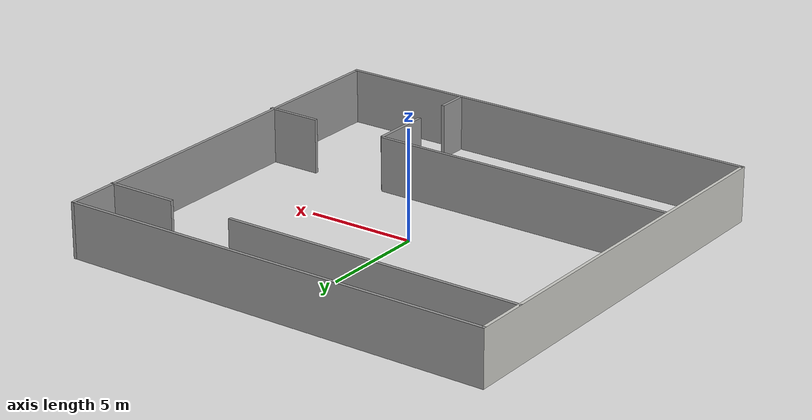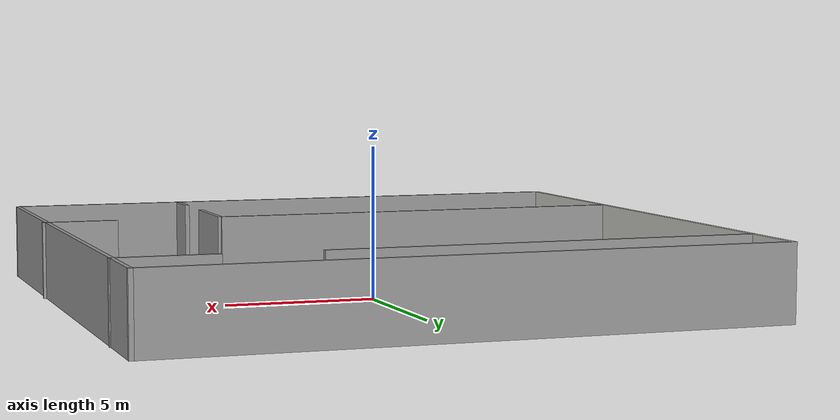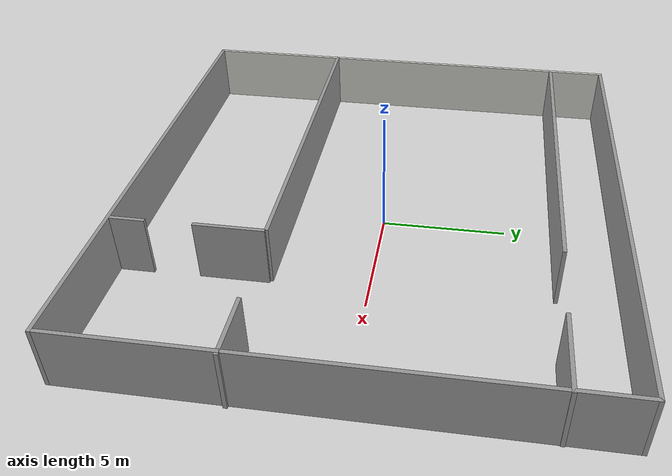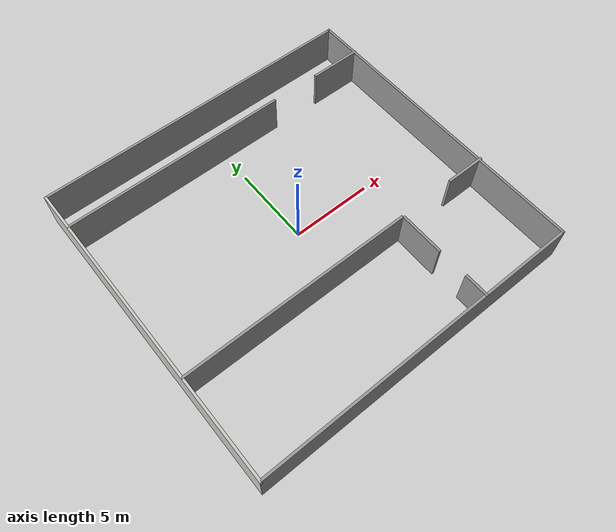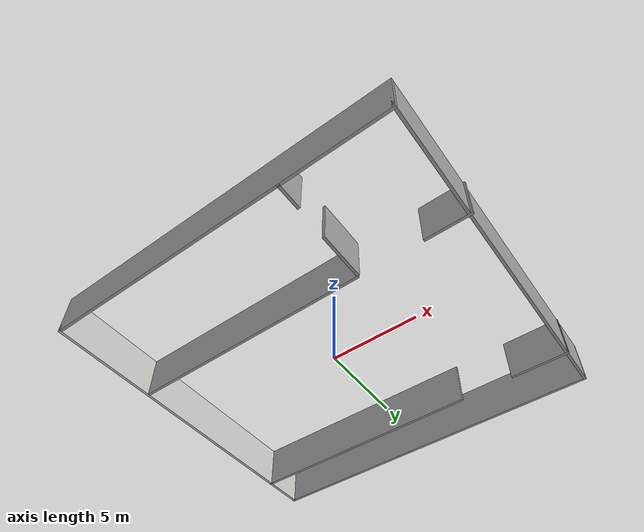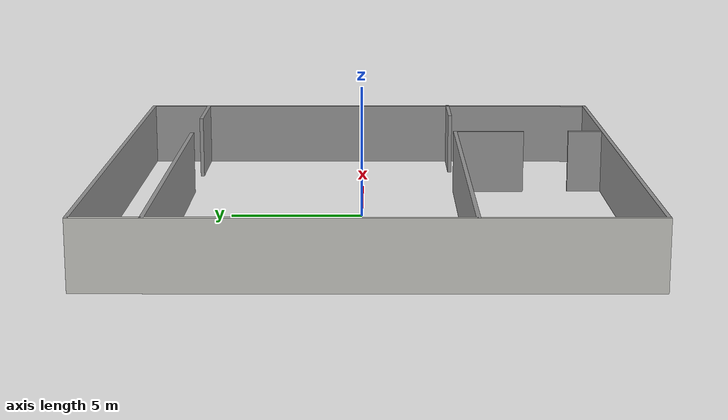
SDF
<?xml version='1.0'?>
<sdf version='1.6'>
  <model name='myroom'>
    <pose frame=''>0.020917 -0.247652 0 0 -0 0</pose>
    <link name='Wall_11'>
      <collision name='Wall_11_Collision'>
        <geometry>
          <box>
            <size>14 0.15 2.5</size>
          </box>
        </geometry>
        <pose frame=''>0 0 1.25 0 -0 0</pose>
      </collision>
      <visual name='Wall_11_Visual'>
        <pose frame=''>0 0 1.25 0 -0 0</pose>
        <geometry>
          <box>
            <size>14 0.15 2.5</size>
          </box>
        </geometry>
        <material>
          <script>
            <uri>file://media/materials/scripts/gazebo.material</uri>
            <name>Gazebo/Grey</name>
          </script>
          <ambient>1 1 1 1</ambient>
        </material>
        <meta>
          <layer>0</layer>
        </meta>
      </visual>
      <pose frame=''>-3.17045 7.16312 0 0 -0 0</pose>
    </link>
    <link name='Wall_14'>
      <collision name='Wall_14_Collision'>
        <geometry>
          <box>
            <size>3.25 0.15 2.5</size>
          </box>
        </geometry>
        <pose frame=''>0 0 1.25 0 -0 0</pose>
      </collision>
      <visual name='Wall_14_Visual'>
        <pose frame=''>0 0 1.25 0 -0 0</pose>
        <geometry>
          <box>
            <size>3.25 0.15 2.5</size>
          </box>
        </geometry>
        <material>
          <script>
            <uri>file://media/materials/scripts/gazebo.material</uri>
            <name>Gazebo/Grey</name>
          </script>
          <ambient>1 1 1 1</ambient>
        </material>
        <meta>
          <layer>0</layer>
        </meta>
      </visual>
      <pose frame=''>8.48634 7.12266 0 0 -0 0</pose>
    </link>
    <link name='Wall_18'>
      <collision name='Wall_18_Collision'>
        <geometry>
          <box>
            <size>14.25 0.15 2.5</size>
          </box>
        </geometry>
        <pose frame=''>0 0 1.25 0 -0 0</pose>
      </collision>
      <visual name='Wall_18_Visual'>
        <pose frame=''>0 0 1.25 0 -0 0</pose>
        <geometry>
          <box>
            <size>14.25 0.15 2.5</size>
          </box>
        </geometry>
        <material>
          <script>
            <uri>file://media/materials/scripts/gazebo.material</uri>
            <name>Gazebo/Grey</name>
          </script>
          <ambient>1 1 1 1</ambient>
        </material>
        <meta>
          <layer>0</layer>
        </meta>
      </visual>
      <pose frame=''>-3.005 -3.51715 0 0 -0 0</pose>
    </link>
    <link name='Wall_21'>
      <collision name='Wall_21_Collision'>
        <geometry>
          <box>
            <size>2.5 0.15 2.5</size>
          </box>
        </geometry>
        <pose frame=''>0 0 1.25 0 -0 0</pose>
      </collision>
      <visual name='Wall_21_Visual'>
        <pose frame=''>0 0 1.25 0 -0 0</pose>
        <geometry>
          <box>
            <size>2.5 0.15 2.5</size>
          </box>
        </geometry>
        <material>
          <script>
            <uri>file://media/materials/scripts/gazebo.material</uri>
            <name>Gazebo/Grey</name>
          </script>
          <ambient>1 1 1 1</ambient>
        </material>
        <meta>
          <layer>0</layer>
        </meta>
      </visual>
      <pose frame=''>8.92046 -3.4767 0 0 -0 0</pose>
    </link>
    <link name='Wall_23'>
      <collision name='Wall_23_Collision'>
        <geometry>
          <box>
            <size>1.5 0.15 2.5</size>
          </box>
        </geometry>
        <pose frame=''>0 0 1.25 0 -0 0</pose>
      </collision>
      <visual name='Wall_23_Visual'>
        <pose frame=''>0 0 1.25 0 -0 0</pose>
        <geometry>
          <box>
            <size>1.5 0.15 2.5</size>
          </box>
        </geometry>
        <material>
          <script>
            <uri>file://media/materials/scripts/gazebo.material</uri>
            <name>Gazebo/Grey</name>
          </script>
          <ambient>1 1 1 1</ambient>
        </material>
        <meta>
          <layer>0</layer>
        </meta>
      </visual>
      <pose frame=''>4.18537 -8.87003 0 0 -0 1.5708</pose>
    </link>
    <link name='Wall_26'>
      <collision name='Wall_26_Collision'>
        <geometry>
          <box>
            <size>2.75 0.15 2.5</size>
          </box>
        </geometry>
        <pose frame=''>0 0 1.25 0 -0 0</pose>
      </collision>
      <visual name='Wall_26_Visual'>
        <pose frame=''>0 0 1.25 0 -0 0</pose>
        <geometry>
          <box>
            <size>2.75 0.15 2.5</size>
          </box>
        </geometry>
        <material>
          <script>
            <uri>file://media/materials/scripts/gazebo.material</uri>
            <name>Gazebo/Grey</name>
          </script>
          <ambient>1 1 1 1</ambient>
        </material>
        <meta>
          <layer>0</layer>
        </meta>
      </visual>
      <pose frame=''>4.14491 -4.92767 0 0 -0 1.5708</pose>
    </link>
    <link name='Wall_5'>
      <collision name='Wall_5_Collision'>
        <geometry>
          <box>
            <size>19.25 0.15 2.5</size>
          </box>
        </geometry>
        <pose frame=''>0 0 1.25 0 -0 0</pose>
      </collision>
      <visual name='Wall_5_Visual'>
        <pose frame=''>0 0 1.25 0 -0 0</pose>
        <geometry>
          <box>
            <size>19.25 0.15 2.5</size>
          </box>
        </geometry>
        <material>
          <script>
            <uri>file://media/materials/scripts/gazebo.material</uri>
            <name>Gazebo/CeilingTiled</name>
          </script>
          <ambient>1 1 1 1</ambient>
        </material>
        <meta>
          <layer>0</layer>
        </meta>
      </visual>
      <pose frame=''>-10.0955 0 0 0 0 -1.5708</pose>
    </link>
    <link name='Wall_7'>
      <collision name='Wall_7_Collision'>
        <geometry>
          <box>
            <size>20.25 0.15 2.5</size>
          </box>
        </geometry>
        <pose frame=''>0 0 1.25 0 -0 0</pose>
      </collision>
      <visual name='Wall_7_Visual'>
        <pose frame=''>0 0 1.25 0 -0 0</pose>
        <geometry>
          <box>
            <size>20.25 0.15 2.5</size>
          </box>
        </geometry>
        <material>
          <script>
            <uri>file://media/materials/scripts/gazebo.material</uri>
            <name>Gazebo/Grey</name>
          </script>
          <ambient>1 1 1 1</ambient>
        </material>
        <meta>
          <layer>0</layer>
        </meta>
      </visual>
      <pose frame=''>-0.045454 -9.55 0 0 -0 0</pose>
    </link>
    <link name='Wall_8'>
      <collision name='Wall_8_Collision'>
        <geometry>
          <box>
            <size>19.25 0.15 2.5</size>
          </box>
        </geometry>
        <pose frame=''>0 0 1.25 0 -0 0</pose>
      </collision>
      <visual name='Wall_8_Visual'>
        <pose frame=''>0 0 1.25 0 -0 0</pose>
        <geometry>
          <box>
            <size>19.25 0.15 2.5</size>
          </box>
        </geometry>
        <material>
          <script>
            <uri>file://media/materials/scripts/gazebo.material</uri>
            <name>Gazebo/Grey</name>
          </script>
          <ambient>1 1 1 1</ambient>
        </material>
        <meta>
          <layer>0</layer>
        </meta>
      </visual>
      <pose frame=''>10.0045 0 0 0 -0 1.5708</pose>
    </link>
    <link name='Wall_9'>
      <collision name='Wall_9_Collision'>
        <geometry>
          <box>
            <size>20.25 0.15 2.5</size>
          </box>
        </geometry>
        <pose frame=''>0 0 1.25 0 -0 0</pose>
      </collision>
      <visual name='Wall_9_Visual'>
        <pose frame=''>0 0 1.25 0 -0 0</pose>
        <geometry>
          <box>
            <size>20.25 0.15 2.5</size>
          </box>
        </geometry>
        <material>
          <script>
            <uri>file://media/materials/scripts/gazebo.material</uri>
            <name>Gazebo/Grey</name>
          </script>
          <ambient>1 1 1 1</ambient>
        </material>
        <meta>
          <layer>0</layer>
        </meta>
      </visual>
      <pose frame=''>-0.045454 9.55 0 0 -0 3.14159</pose>
    </link>
    <static>1</static>
  </model>
</sdf>
